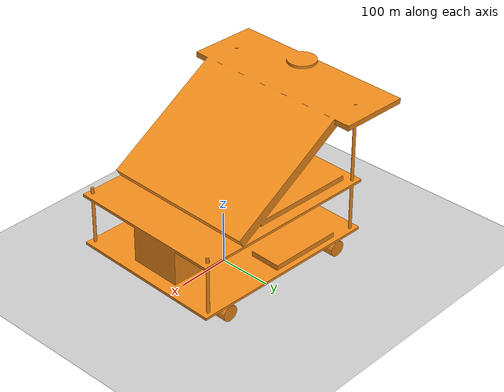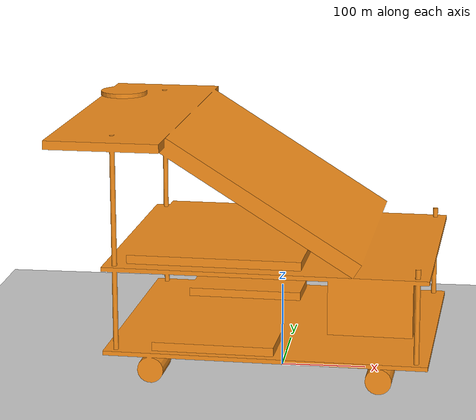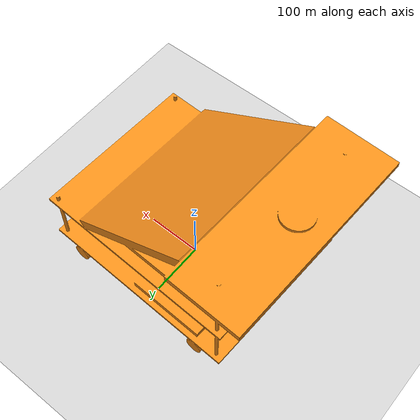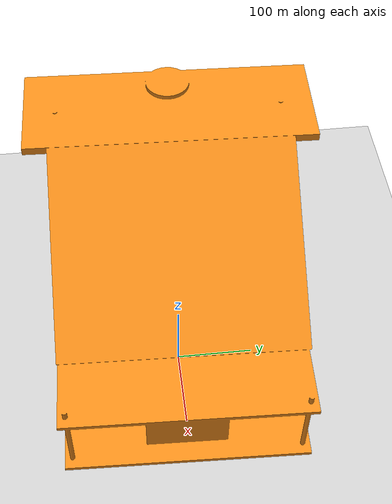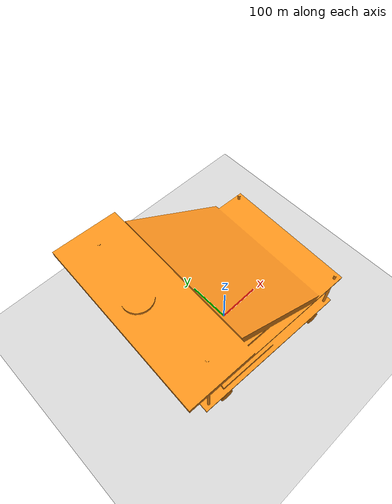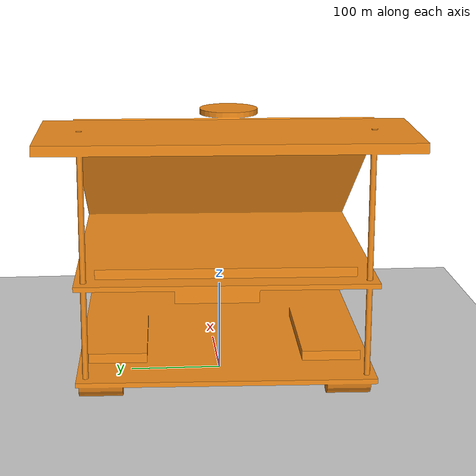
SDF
<sdf version="1.7">
 <world name="default">
  <light name="sun" type="directional">
   <pose>0 0 10 0 -0 0</pose>
   <diffuse>0.8 0.8 0.8 1</diffuse>
   <specular>0.2 0.2 0.2 1</specular>
   <attenuation>
    <range>1000</range>
    <constant>0.9</constant>
    <linear>0.01</linear>
    <quadratic>0.001</quadratic>
   </attenuation>
   <direction>-0.5 0.1 -0.9</direction>
   <spot><inner_angle>0</inner_angle><outer_angle>0</outer_angle><falloff>0</falloff></spot>
  </light>
  <model name="ground_plane">
   <static>1</static>
   <link name="link">
    <collision name="collision">
     <geometry><plane><normal>0 0 1</normal><size>100 100</size></plane></geometry>
     <surface><friction><ode><mu>100</mu><mu2>50</mu2></ode></friction></surface>
    </collision>
    <visual name="visual">
     <cast_shadows>0</cast_shadows>
     <geometry><plane><normal>0 0 1</normal><size>100 100</size></plane></geometry>
     <material>
      <script><uri>file://media/materials/scripts/gazebo.material</uri><name>Gazebo/Grey</name></script>
     </material>
    </visual>
   </link>
  </model>
  <gravity>0 0 -9.8</gravity>
  <magnetic_field>6e-06 2.3e-05 -4.2e-05</magnetic_field>
  <atmosphere type="adiabatic"/>
  <physics type="ode">
   <max_step_size>0.001</max_step_size>
   <real_time_factor>1</real_time_factor>
   <real_time_update_rate>1000</real_time_update_rate>
  </physics>
  <scene><ambient>0.4 0.4 0.4 1</ambient><background>0.7 0.7 0.7 1</background><shadows>1</shadows></scene>
  <spherical_coordinates>
   <surface_model>EARTH_WGS84</surface_model>
   <latitude_deg>0</latitude_deg>
   <longitude_deg>0</longitude_deg>
   <elevation>0</elevation>
   <heading_deg>0</heading_deg>
  </spherical_coordinates>
  <model name="my_bot">
   <link name="base_link">
    <inertial>
     <pose>-0.011394 0.000196 0.045066 0 -0 0</pose>
     <mass>1.86058</mass>
     <inertia>
      <ixx>0.0131857</ixx>
      <ixy>-5.476e-05</ixy>
      <ixz>0.00173753</ixz>
      <iyy>0.0239409</iyy>
      <iyz>2.88556e-05</iyz>
      <izz>0.0268578</izz>
     </inertia>
    </inertial>
    <collision name="base_link_fixed_joint_lump__chassis_collision">
     <geometry><mesh><scale>1 1 1</scale><uri>model://articubot_one/meshes/base_link.STL</uri></mesh></geometry>
    </collision>
    <collision name="base_link_fixed_joint_lump__caster_wheel_left_collision_1">
     <pose>0.14224 0.096805 -0.005 0 -0 0</pose>
     <geometry><mesh><scale>1 1 1</scale><uri>model://articubot_one/meshes/left_caster.STL</uri></mesh></geometry>
     <surface><friction><ode><mu>0.001</mu><mu2>0.001</mu2></ode></friction></surface>
    </collision>
    <collision name="base_link_fixed_joint_lump__caster_wheel_right_collision_2">
     <pose>0.14239 -0.092509 -0.005 0 -0 0</pose>
     <geometry><mesh><scale>1 1 1</scale><uri>model://articubot_one/meshes/right_caster.STL</uri></mesh></geometry>
     <surface><friction><ode><mu>0.001</mu><mu2>0.001</mu2></ode></friction></surface>
    </collision>
    <collision name="base_link_fixed_joint_lump__laser_frame_collision_3">
     <pose>0 0 0.24 0 -0 0</pose>
     <geometry><cylinder><length>0.04</length><radius>0.05</radius></cylinder></geometry>
    </collision>
    <visual name="base_link_fixed_joint_lump__chassis_visual">
     <geometry><mesh><scale>1 1 1</scale><uri>model://articubot_one/meshes/base_link.STL</uri></mesh></geometry>
     <material>
      <script><name>Gazebo/Orange</name><uri>file://media/materials/scripts/gazebo.material</uri></script>
     </material>
    </visual>
    <visual name="base_link_fixed_joint_lump__caster_wheel_left_visual_1">
     <pose>0.14224 0.096805 -0.005 0 -0 0</pose>
     <geometry><mesh><scale>1 1 1</scale><uri>model://articubot_one/meshes/left_caster.STL</uri></mesh></geometry>
     <material>
      <script><name>Gazebo/White</name><uri>file://media/materials/scripts/gazebo.material</uri></script>
     </material>
    </visual>
    <visual name="base_link_fixed_joint_lump__caster_wheel_right_visual_2">
     <pose>0.14239 -0.092509 -0.005 0 -0 0</pose>
     <geometry><mesh><scale>1 1 1</scale><uri>model://articubot_one/meshes/right_caster.STL</uri></mesh></geometry>
     <material>
      <script><name>Gazebo/White</name><uri>file://media/materials/scripts/gazebo.material</uri></script>
     </material>
    </visual>
    <visual name="base_link_fixed_joint_lump__laser_frame_visual_3">
     <pose>0 0 0.24 0 -0 0</pose>
     <geometry><cylinder><length>0.04</length><radius>0.05</radius></cylinder></geometry>
     <material>
      <script><name>Gazebo/Black</name><uri>file://media/materials/scripts/gazebo.material</uri></script>
     </material>
    </visual>
    <visual name="base_link_fixed_joint_lump__laser_frame_visual_4">
     <pose>0 0 0.19 0 -0 0</pose>
     <geometry><cylinder><length>0.1</length><radius>0.01</radius></cylinder></geometry>
     <material>
      <script><name>Gazebo/Black</name><uri>file://media/materials/scripts/gazebo.material</uri></script>
     </material>
    </visual>
    <sensor name="laser" type="ray">
     <visualize>0</visualize>
     <update_rate>10</update_rate>
     <ray>
      <scan>
       <horizontal>
        <samples>360</samples>
        <min_angle>-3.14</min_angle>
        <max_angle>3.14</max_angle>
        <resolution>1</resolution>
       </horizontal>
       <vertical><samples>1</samples><min_angle>0</min_angle><max_angle>0</max_angle></vertical>
      </scan>
      <range><min>0.3</min><max>12</max></range>
     </ray>
     <plugin name="laser_controller" filename="libgazebo_ros_ray_sensor.so">
      <ros><argument>~/out:=scan</argument></ros>
      <output_type>sensor_msgs/LaserScan</output_type>
      <frame_name>laser_frame</frame_name>
     </plugin>
     <pose>0 0 0.24 0 -0 0</pose>
    </sensor>
   </link>
   <joint name="left_wheel_joint" type="revolute">
    <pose relative_to="base_link">-0.10996 0.152 -0.038442 -1.5708 0 0</pose>
    <parent>base_link</parent>
    <child>left_wheel</child>
    <axis>
     <xyz>0 0 1</xyz>
     <limit><effort>10</effort><velocity>10</velocity><lower>-1e+16</lower><upper>1e+16</upper></limit>
     <dynamics><spring_reference>0</spring_reference><spring_stiffness>0</spring_stiffness></dynamics>
    </axis>
   </joint>
   <link name="left_wheel">
    <pose relative_to="left_wheel_joint">0 0 0 0 -0 0</pose>
    <inertial>
     <pose>0 0 -0.005484 0 -0 0</pose>
     <mass>0.047919</mass>
     <inertia>
      <ixx>4.264e-05</ixx>
      <ixy>1.1026e-20</ixy>
      <ixz>2.2523e-21</ixz>
      <iyy>4.264e-05</iyy>
      <iyz>6.3389e-22</iyz>
      <izz>8.403e-05</izz>
     </inertia>
    </inertial>
    <collision name="left_wheel_collision">
     <geometry><mesh><scale>1 1 1</scale><uri>model://articubot_one/meshes/left_wheel.STL</uri></mesh></geometry>
    </collision>
    <visual name="left_wheel_visual">
     <geometry><mesh><scale>1 1 1</scale><uri>model://articubot_one/meshes/left_wheel.STL</uri></mesh></geometry>
     <material>
      <script><name>Gazebo/Blue</name><uri>file://media/materials/scripts/gazebo.material</uri></script>
     </material>
    </visual>
   </link>
   <joint name="right_wheel_joint" type="revolute">
    <pose relative_to="base_link">-0.10996 -0.152 -0.038442 1.5708 -0 0</pose>
    <parent>base_link</parent>
    <child>right_wheel</child>
    <axis>
     <xyz>0 0 -1</xyz>
     <limit><effort>10</effort><velocity>10</velocity><lower>-1e+16</lower><upper>1e+16</upper></limit>
     <dynamics><spring_reference>0</spring_reference><spring_stiffness>0</spring_stiffness></dynamics>
    </axis>
   </joint>
   <link name="right_wheel">
    <pose relative_to="right_wheel_joint">0 0 0 0 -0 0</pose>
    <inertial>
     <pose>0 -0 -0.005484 0 -0 0</pose>
     <mass>0.047919</mass>
     <inertia>
      <ixx>4.264e-05</ixx>
      <ixy>-5.7588e-21</ixy>
      <ixz>8.7048e-22</ixz>
      <iyy>4.264e-05</iyy>
      <iyz>7.6467e-21</iyz>
      <izz>8.403e-05</izz>
     </inertia>
    </inertial>
    <collision name="right_wheel_collision">
     <geometry><mesh><scale>1 1 1</scale><uri>model://articubot_one/meshes/right_wheel.STL</uri></mesh></geometry>
    </collision>
    <visual name="right_wheel_visual">
     <geometry><mesh><scale>1 1 1</scale><uri>model://articubot_one/meshes/right_wheel.STL</uri></mesh></geometry>
     <material>
      <script><name>Gazebo/Blue</name><uri>file://media/materials/scripts/gazebo.material</uri></script>
     </material>
    </visual>
   </link>
   <static>0</static>
   <plugin name="gazebo_ros2_control" filename="libgazebo_ros2_control.so">
    <parameters>/home/dell/agv_ws/install/articubot_one/share/articubot_one/config/my_controllers.yaml</parameters>
    <parameters>/home/dell/agv_ws/install/articubot_one/share/articubot_one/config/gaz_ros2_ctl_use_sim.yaml</parameters>
   </plugin>
   <pose>0.110977 0.000345 0.088312 0 -0.000326 -0.03808</pose>
  </model>
 </world>
</sdf>
